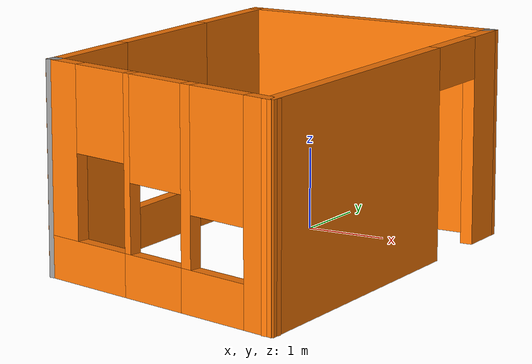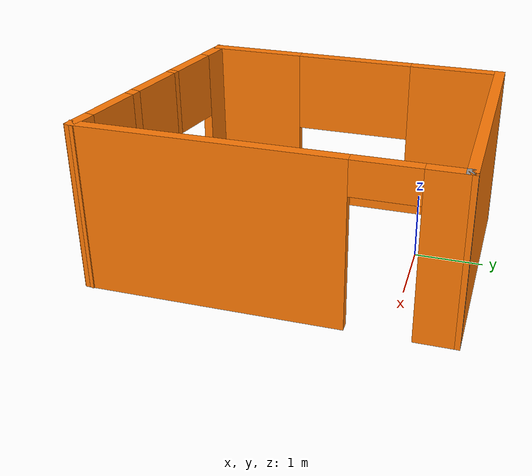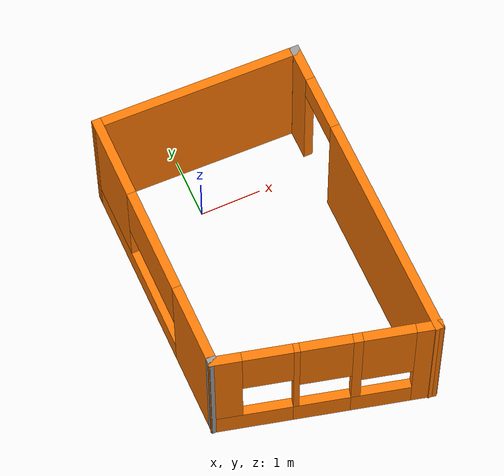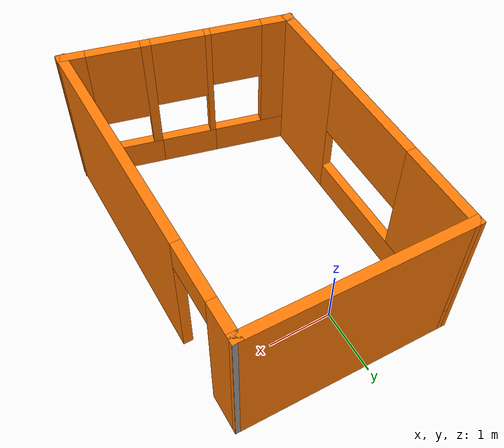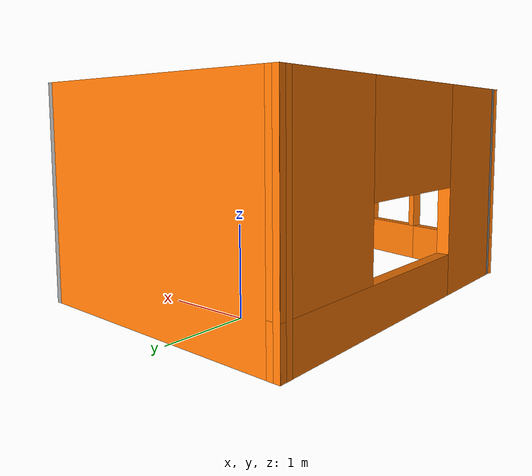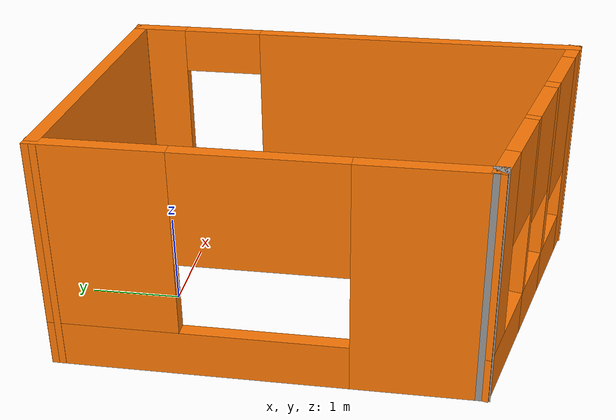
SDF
<?xml version='1.0'?>
<sdf version='1.6'>
  <model name='SmartCondominium'>
    <pose frame=''>0.345 -1.69471 0 0 -0 0</pose>
    <link name='Wall_0'>
      <pose frame=''>-1.635 0.415214 0 0 -0 1.5708</pose>
      <visual name='Wall_0_Visual_0'>
        <pose frame=''>-1.54493 0 1.25 0 -0 0</pose>
        <geometry>
          <box>
            <size>1.39714 0.15 2.5</size>
          </box>
        </geometry>
        <material>
          <script>
            <uri>file://media/materials/scripts/gazebo.material</uri>
            <name>Gazebo/Grey</name>
          </script>
          <ambient>0.996078 0.47451 0.0196078 1</ambient>
        </material>
        <meta>
          <layer>0</layer>
        </meta>
      </visual>
      <collision name='Wall_0_Collision_0'>
        <geometry>
          <box>
            <size>1.39714 0.15 2.5</size>
          </box>
        </geometry>
        <pose frame=''>-1.54493 0 1.25 0 -0 0</pose>
      </collision>
      <visual name='Wall_0_Visual_1'>
        <pose frame=''>0.698569 0 0.25 0 -0 0</pose>
        <geometry>
          <box>
            <size>3.08986 0.15 0.5</size>
          </box>
        </geometry>
        <material>
          <script>
            <uri>file://media/materials/scripts/gazebo.material</uri>
            <name>Gazebo/Grey</name>
          </script>
          <ambient>0.996078 0.47451 0.0196078 1</ambient>
        </material>
        <meta>
          <layer>0</layer>
        </meta>
      </visual>
      <collision name='Wall_0_Collision_1'>
        <geometry>
          <box>
            <size>3.08986 0.15 0.5</size>
          </box>
        </geometry>
        <pose frame=''>0.698569 0 0.25 0 -0 0</pose>
      </collision>
      <visual name='Wall_0_Visual_2'>
        <pose frame=''>1.55483 0 1.5 0 -0 0</pose>
        <geometry>
          <box>
            <size>1.37734 0.15 2</size>
          </box>
        </geometry>
        <material>
          <script>
            <uri>file://media/materials/scripts/gazebo.material</uri>
            <name>Gazebo/Grey</name>
          </script>
          <ambient>0.996078 0.47451 0.0196078 1</ambient>
        </material>
        <meta>
          <layer>0</layer>
        </meta>
      </visual>
      <collision name='Wall_0_Collision_2'>
        <geometry>
          <box>
            <size>1.37734 0.15 2</size>
          </box>
        </geometry>
        <pose frame=''>1.55483 0 1.5 0 -0 0</pose>
      </collision>
      <visual name='Wall_0_Visual_3'>
        <pose frame=''>0.0099 0 1.9 0 -0 0</pose>
        <geometry>
          <box>
            <size>1.71253 0.15 1.2</size>
          </box>
        </geometry>
        <material>
          <script>
            <uri>file://media/materials/scripts/gazebo.material</uri>
            <name>Gazebo/Grey</name>
          </script>
          <ambient>0.996078 0.47451 0.0196078 1</ambient>
        </material>
        <meta>
          <layer>0</layer>
        </meta>
      </visual>
      <collision name='Wall_0_Collision_3'>
        <geometry>
          <box>
            <size>1.71253 0.15 1.2</size>
          </box>
        </geometry>
        <pose frame=''>0.0099 0 1.9 0 -0 0</pose>
      </collision>
    </link>
    <link name='Wall_1'>
      <collision name='Wall_1_Collision'>
        <geometry>
          <box>
            <size>3.41967 0.15 2.5</size>
          </box>
        </geometry>
        <pose frame=''>0 0 1.25 0 -0 0</pose>
      </collision>
      <visual name='Wall_1_Visual'>
        <pose frame=''>0 0 1.25 0 -0 0</pose>
        <geometry>
          <box>
            <size>3.41967 0.15 2.5</size>
          </box>
        </geometry>
        <material>
          <script>
            <uri>file://media/materials/scripts/gazebo.material</uri>
            <name>Gazebo/Grey</name>
          </script>
          <ambient>0.996078 0.47451 0.0196078 1</ambient>
        </material>
        <meta>
          <layer>0</layer>
        </meta>
      </visual>
      <pose frame=''>-0.0005 2.55071 0 0 0 -0.020187</pose>
    </link>
    <link name='Wall_2'>
      <collision name='Wall_2_Collision'>
        <geometry>
          <box>
            <size>0.15 0.15 2.5</size>
          </box>
        </geometry>
        <pose frame=''>0 0 1.25 0 -0 0</pose>
      </collision>
      <visual name='Wall_2_Visual'>
        <pose frame=''>0 0 1.25 0 -0 0</pose>
        <geometry>
          <box>
            <size>0.15 0.15 2.5</size>
          </box>
        </geometry>
        <material>
          <script>
            <uri>file://media/materials/scripts/gazebo.material</uri>
            <name>Gazebo/Grey</name>
          </script>
          <ambient>1 1 1 1</ambient>
        </material>
        <meta>
          <layer>0</layer>
        </meta>
      </visual>
      <pose frame=''>1.634 2.51771 0 0 -0 0</pose>
    </link>
    <link name='Wall_3'>
      <collision name='Wall_3_Collision'>
        <geometry>
          <box>
            <size>0.15 0.15 2.5</size>
          </box>
        </geometry>
        <pose frame=''>0 0 1.25 0 -0 0</pose>
      </collision>
      <visual name='Wall_3_Visual'>
        <pose frame=''>0 0 1.25 0 -0 0</pose>
        <geometry>
          <box>
            <size>0.15 0.15 2.5</size>
          </box>
        </geometry>
        <material>
          <script>
            <uri>file://media/materials/scripts/gazebo.material</uri>
            <name>Gazebo/Grey</name>
          </script>
          <ambient>1 1 1 1</ambient>
        </material>
        <meta>
          <layer>0</layer>
        </meta>
      </visual>
      <pose frame=''>1.634 2.51771 0 0 -0 0</pose>
    </link>
    <link name='Wall_6'>
      <pose frame=''>1.6345 -0.025786 0 0 0 -1.5706</pose>
      <visual name='Wall_6_Visual_0'>
        <pose frame=''>-2.30848 0 1.25 0 -0 0</pose>
        <geometry>
          <box>
            <size>0.619813 0.15 2.5</size>
          </box>
        </geometry>
        <material>
          <script>
            <uri>file://media/materials/scripts/gazebo.material</uri>
            <name>Gazebo/Grey</name>
          </script>
          <ambient>0.996078 0.47451 0.0196078 1</ambient>
        </material>
        <meta>
          <layer>0</layer>
        </meta>
      </visual>
      <collision name='Wall_6_Collision_0'>
        <geometry>
          <box>
            <size>0.619813 0.15 2.5</size>
          </box>
        </geometry>
        <pose frame=''>-2.30848 0 1.25 0 -0 0</pose>
      </collision>
      <visual name='Wall_6_Visual_1'>
        <pose frame=''>0.759906 0 1.25 0 -0 0</pose>
        <geometry>
          <box>
            <size>3.71696 0.15 2.5</size>
          </box>
        </geometry>
        <material>
          <script>
            <uri>file://media/materials/scripts/gazebo.material</uri>
            <name>Gazebo/Grey</name>
          </script>
          <ambient>0.996078 0.47451 0.0196078 1</ambient>
        </material>
        <meta>
          <layer>0</layer>
        </meta>
      </visual>
      <collision name='Wall_6_Collision_1'>
        <geometry>
          <box>
            <size>3.71696 0.15 2.5</size>
          </box>
        </geometry>
        <pose frame=''>0.759906 0 1.25 0 -0 0</pose>
      </collision>
      <visual name='Wall_6_Visual_2'>
        <pose frame=''>-1.54858 0 2.25 0 -0 0</pose>
        <geometry>
          <box>
            <size>0.9 0.15 0.5</size>
          </box>
        </geometry>
        <material>
          <script>
            <uri>file://media/materials/scripts/gazebo.material</uri>
            <name>Gazebo/Grey</name>
          </script>
          <ambient>0.996078 0.47451 0.0196078 1</ambient>
        </material>
        <meta>
          <layer>0</layer>
        </meta>
      </visual>
      <collision name='Wall_6_Collision_2'>
        <geometry>
          <box>
            <size>0.9 0.15 0.5</size>
          </box>
        </geometry>
        <pose frame=''>-1.54858 0 2.25 0 -0 0</pose>
      </collision>
    </link>
    <link name='Wall_7'>
      <pose frame=''>0 -2.16129 0 0 -0 2.89705</pose>
      <visual name='Wall_7_Visual_0'>
        <pose frame=''>-1.55781 0 1.25 0 -0 0</pose>
        <geometry>
          <box>
            <size>0.404662 0.15 2.5</size>
          </box>
        </geometry>
        <material>
          <script>
            <uri>file://media/materials/scripts/gazebo.material</uri>
            <name>Gazebo/Grey</name>
          </script>
          <ambient>0.996078 0.47451 0.0196078 1</ambient>
        </material>
        <meta>
          <layer>0</layer>
        </meta>
      </visual>
      <collision name='Wall_7_Collision_0'>
        <geometry>
          <box>
            <size>0.404662 0.15 2.5</size>
          </box>
        </geometry>
        <pose frame=''>-1.55781 0 1.25 0 -0 0</pose>
      </collision>
      <visual name='Wall_7_Visual_1'>
        <pose frame=''>-0.882358 0 0.25 0 -0 0</pose>
        <geometry>
          <box>
            <size>0.946236 0.15 0.5</size>
          </box>
        </geometry>
        <material>
          <script>
            <uri>file://media/materials/scripts/gazebo.material</uri>
            <name>Gazebo/Grey</name>
          </script>
          <ambient>0.996078 0.47451 0.0196078 1</ambient>
        </material>
        <meta>
          <layer>0</layer>
        </meta>
      </visual>
      <collision name='Wall_7_Collision_1'>
        <geometry>
          <box>
            <size>0.946236 0.15 0.5</size>
          </box>
        </geometry>
        <pose frame=''>-0.882358 0 0.25 0 -0 0</pose>
      </collision>
      <visual name='Wall_7_Visual_2'>
        <pose frame=''>0.036579 0 0.25 0 -0 0</pose>
        <geometry>
          <box>
            <size>0.891637 0.15 0.5</size>
          </box>
        </geometry>
        <material>
          <script>
            <uri>file://media/materials/scripts/gazebo.material</uri>
            <name>Gazebo/Grey</name>
          </script>
          <ambient>0.996078 0.47451 0.0196078 1</ambient>
        </material>
        <meta>
          <layer>0</layer>
        </meta>
      </visual>
      <collision name='Wall_7_Collision_2'>
        <geometry>
          <box>
            <size>0.891637 0.15 0.5</size>
          </box>
        </geometry>
        <pose frame=''>0.036579 0 0.25 0 -0 0</pose>
      </collision>
      <visual name='Wall_7_Visual_3'>
        <pose frame=''>1.12127 0 0.25 0 -0 0</pose>
        <geometry>
          <box>
            <size>1.27774 0.15 0.5</size>
          </box>
        </geometry>
        <material>
          <script>
            <uri>file://media/materials/scripts/gazebo.material</uri>
            <name>Gazebo/Grey</name>
          </script>
          <ambient>0.996078 0.47451 0.0196078 1</ambient>
        </material>
        <meta>
          <layer>0</layer>
        </meta>
      </visual>
      <collision name='Wall_7_Collision_3'>
        <geometry>
          <box>
            <size>1.27774 0.15 0.5</size>
          </box>
        </geometry>
        <pose frame=''>1.12127 0 0.25 0 -0 0</pose>
      </collision>
      <visual name='Wall_7_Visual_4'>
        <pose frame=''>1.50848 0 1.5 0 -0 0</pose>
        <geometry>
          <box>
            <size>0.503309 0.15 2</size>
          </box>
        </geometry>
        <material>
          <script>
            <uri>file://media/materials/scripts/gazebo.material</uri>
            <name>Gazebo/Grey</name>
          </script>
          <ambient>0.996078 0.47451 0.0196078 1</ambient>
        </material>
        <meta>
          <layer>0</layer>
        </meta>
      </visual>
      <collision name='Wall_7_Collision_4'>
        <geometry>
          <box>
            <size>0.503309 0.15 2</size>
          </box>
        </geometry>
        <pose frame=''>1.50848 0 1.5 0 -0 0</pose>
      </collision>
      <visual name='Wall_7_Visual_5'>
        <pose frame=''>0.436579 0 1.5 0 -0 0</pose>
        <geometry>
          <box>
            <size>0.091637 0.15 2</size>
          </box>
        </geometry>
        <material>
          <script>
            <uri>file://media/materials/scripts/gazebo.material</uri>
            <name>Gazebo/Grey</name>
          </script>
          <ambient>0.996078 0.47451 0.0196078 1</ambient>
        </material>
        <meta>
          <layer>0</layer>
        </meta>
      </visual>
      <collision name='Wall_7_Collision_5'>
        <geometry>
          <box>
            <size>0.091637 0.15 2</size>
          </box>
        </geometry>
        <pose frame=''>0.436579 0 1.5 0 -0 0</pose>
      </collision>
      <visual name='Wall_7_Visual_6'>
        <pose frame=''>0.436579 0 1.5 0 -0 0</pose>
        <geometry>
          <box>
            <size>0.091637 0.15 2</size>
          </box>
        </geometry>
        <material>
          <script>
            <uri>file://media/materials/scripts/gazebo.material</uri>
            <name>Gazebo/Grey</name>
          </script>
          <ambient>0.996078 0.47451 0.0196078 1</ambient>
        </material>
        <meta>
          <layer>0</layer>
        </meta>
      </visual>
      <collision name='Wall_7_Collision_6'>
        <geometry>
          <box>
            <size>0.091637 0.15 2</size>
          </box>
        </geometry>
        <pose frame=''>0.436579 0 1.5 0 -0 0</pose>
      </collision>
      <visual name='Wall_7_Visual_7'>
        <pose frame=''>-0.482358 0 1.5 0 -0 0</pose>
        <geometry>
          <box>
            <size>0.146236 0.15 2</size>
          </box>
        </geometry>
        <material>
          <script>
            <uri>file://media/materials/scripts/gazebo.material</uri>
            <name>Gazebo/Grey</name>
          </script>
          <ambient>0.996078 0.47451 0.0196078 1</ambient>
        </material>
        <meta>
          <layer>0</layer>
        </meta>
      </visual>
      <collision name='Wall_7_Collision_7'>
        <geometry>
          <box>
            <size>0.146236 0.15 2</size>
          </box>
        </geometry>
        <pose frame=''>-0.482358 0 1.5 0 -0 0</pose>
      </collision>
      <visual name='Wall_7_Visual_8'>
        <pose frame=''>-0.482358 0 1.5 0 -0 0</pose>
        <geometry>
          <box>
            <size>0.146236 0.15 2</size>
          </box>
        </geometry>
        <material>
          <script>
            <uri>file://media/materials/scripts/gazebo.material</uri>
            <name>Gazebo/Grey</name>
          </script>
          <ambient>0.996078 0.47451 0.0196078 1</ambient>
        </material>
        <meta>
          <layer>0</layer>
        </meta>
      </visual>
      <collision name='Wall_7_Collision_8'>
        <geometry>
          <box>
            <size>0.146236 0.15 2</size>
          </box>
        </geometry>
        <pose frame=''>-0.482358 0 1.5 0 -0 0</pose>
      </collision>
      <visual name='Wall_7_Visual_9'>
        <pose frame=''>-0.955476 0 1.8 0 -0 0</pose>
        <geometry>
          <box>
            <size>0.8 0.15 1.4</size>
          </box>
        </geometry>
        <material>
          <script>
            <uri>file://media/materials/scripts/gazebo.material</uri>
            <name>Gazebo/Grey</name>
          </script>
          <ambient>0.996078 0.47451 0.0196078 1</ambient>
        </material>
        <meta>
          <layer>0</layer>
        </meta>
      </visual>
      <collision name='Wall_7_Collision_9'>
        <geometry>
          <box>
            <size>0.8 0.15 1.4</size>
          </box>
        </geometry>
        <pose frame=''>-0.955476 0 1.8 0 -0 0</pose>
      </collision>
      <visual name='Wall_7_Visual_10'>
        <pose frame=''>-0.00924 0 1.9 0 -0 0</pose>
        <geometry>
          <box>
            <size>0.8 0.15 1.2</size>
          </box>
        </geometry>
        <material>
          <script>
            <uri>file://media/materials/scripts/gazebo.material</uri>
            <name>Gazebo/Grey</name>
          </script>
          <ambient>0.996078 0.47451 0.0196078 1</ambient>
        </material>
        <meta>
          <layer>0</layer>
        </meta>
      </visual>
      <collision name='Wall_7_Collision_10'>
        <geometry>
          <box>
            <size>0.8 0.15 1.2</size>
          </box>
        </geometry>
        <pose frame=''>-0.00924 0 1.9 0 -0 0</pose>
      </collision>
      <visual name='Wall_7_Visual_11'>
        <pose frame=''>-0.00924 0 1.9 0 -0 0</pose>
        <geometry>
          <box>
            <size>0.8 0.15 1.2</size>
          </box>
        </geometry>
        <material>
          <script>
            <uri>file://media/materials/scripts/gazebo.material</uri>
            <name>Gazebo/Grey</name>
          </script>
          <ambient>0.996078 0.47451 0.0196078 1</ambient>
        </material>
        <meta>
          <layer>0</layer>
        </meta>
      </visual>
      <collision name='Wall_7_Collision_11'>
        <geometry>
          <box>
            <size>0.8 0.15 1.2</size>
          </box>
        </geometry>
        <pose frame=''>-0.00924 0 1.9 0 -0 0</pose>
      </collision>
      <visual name='Wall_7_Visual_12'>
        <pose frame=''>0.869613 0 2 0 -0 0</pose>
        <geometry>
          <box>
            <size>0.774431 0.15 1</size>
          </box>
        </geometry>
        <material>
          <script>
            <uri>file://media/materials/scripts/gazebo.material</uri>
            <name>Gazebo/Grey</name>
          </script>
          <ambient>0.996078 0.47451 0.0196078 1</ambient>
        </material>
        <meta>
          <layer>0</layer>
        </meta>
      </visual>
      <collision name='Wall_7_Collision_12'>
        <geometry>
          <box>
            <size>0.774431 0.15 1</size>
          </box>
        </geometry>
        <pose frame=''>0.869613 0 2 0 -0 0</pose>
      </collision>
      <visual name='Wall_7_Visual_13'>
        <pose frame=''>0.869613 0 2 0 -0 0</pose>
        <geometry>
          <box>
            <size>0.774431 0.15 1</size>
          </box>
        </geometry>
        <material>
          <script>
            <uri>file://media/materials/scripts/gazebo.material</uri>
            <name>Gazebo/Grey</name>
          </script>
          <ambient>0.996078 0.47451 0.0196078 1</ambient>
        </material>
        <meta>
          <layer>0</layer>
        </meta>
      </visual>
      <collision name='Wall_7_Collision_13'>
        <geometry>
          <box>
            <size>0.774431 0.15 1</size>
          </box>
        </geometry>
        <pose frame=''>0.869613 0 2 0 -0 0</pose>
      </collision>
    </link>
    <link name='Wall_8'>
      <collision name='Wall_8_Collision'>
        <geometry>
          <box>
            <size>0.15 0.15 2.5</size>
          </box>
        </geometry>
        <pose frame=''>0 0 1.25 0 -0 0</pose>
      </collision>
      <visual name='Wall_8_Visual'>
        <pose frame=''>0 0 1.25 0 -0 0</pose>
        <geometry>
          <box>
            <size>0.15 0.15 2.5</size>
          </box>
        </geometry>
        <material>
          <script>
            <uri>file://media/materials/scripts/gazebo.material</uri>
            <name>Gazebo/Grey</name>
          </script>
          <ambient>1 1 1 1</ambient>
        </material>
        <meta>
          <layer>0</layer>
        </meta>
      </visual>
      <pose frame=''>-1.635 -1.75329 0 0 -0 0</pose>
    </link>
    <link name='Wall_9'>
      <collision name='Wall_9_Collision'>
        <geometry>
          <box>
            <size>0.15 0.15 2.5</size>
          </box>
        </geometry>
        <pose frame=''>0 0 1.25 0 -0 0</pose>
      </collision>
      <visual name='Wall_9_Visual'>
        <pose frame=''>0 0 1.25 0 -0 0</pose>
        <geometry>
          <box>
            <size>0.15 0.15 2.5</size>
          </box>
        </geometry>
        <material>
          <script>
            <uri>file://media/materials/scripts/gazebo.material</uri>
            <name>Gazebo/Grey</name>
          </script>
          <ambient>1 1 1 1</ambient>
        </material>
        <meta>
          <layer>0</layer>
        </meta>
      </visual>
      <pose frame=''>-1.635 -1.75329 0 0 -0 0</pose>
    </link>
    <static>1</static>
  </model>
</sdf>
